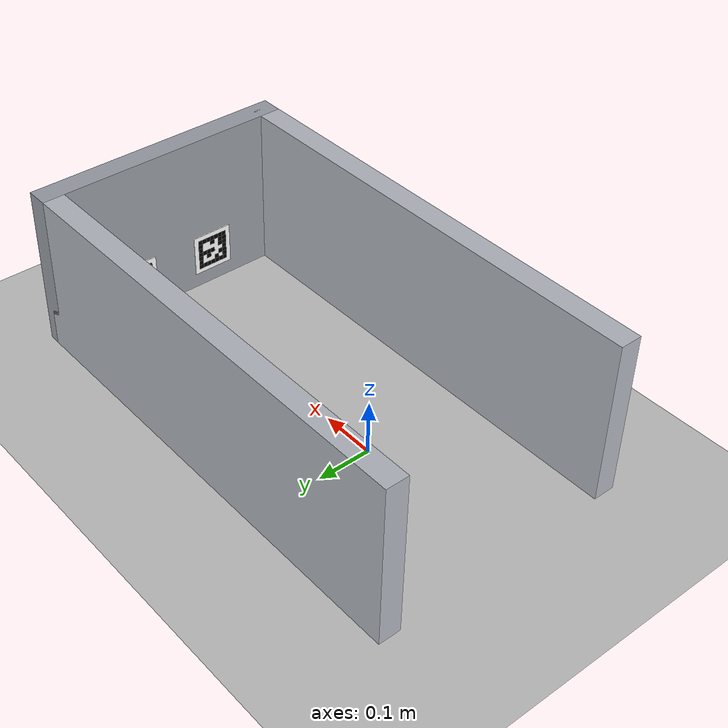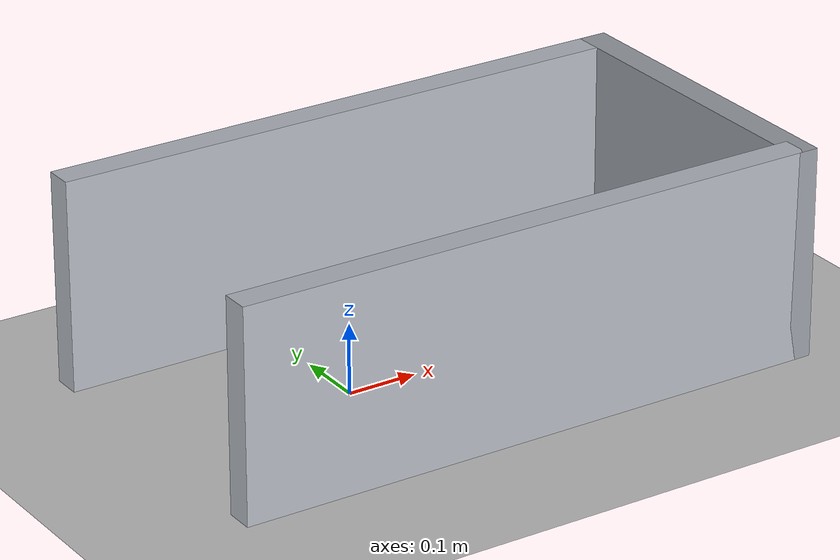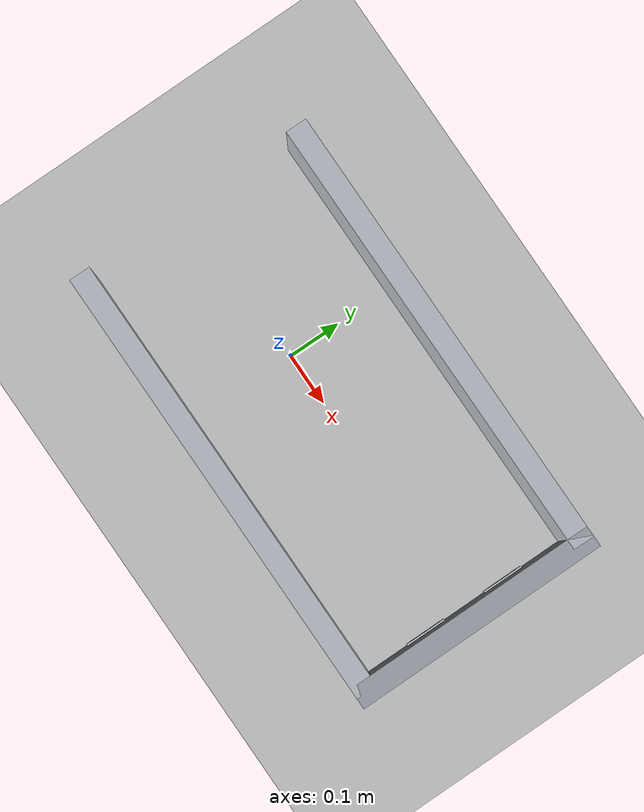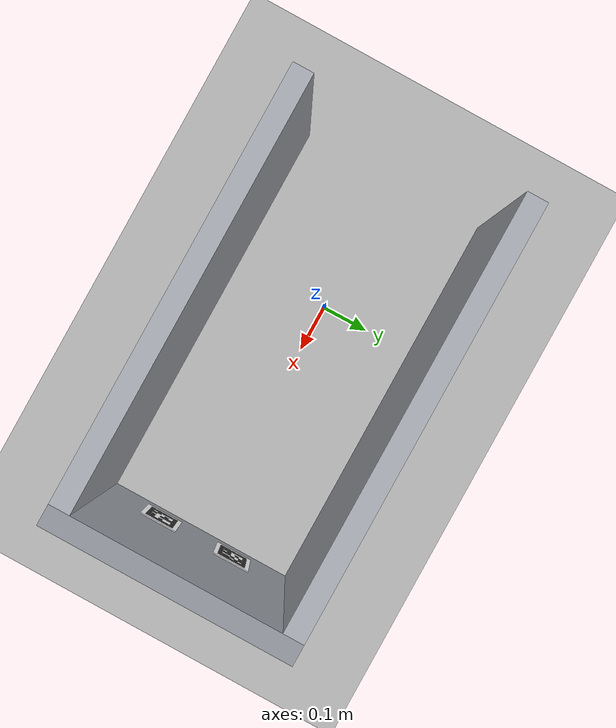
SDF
<?xml version="1.0" ?>
<sdf version="1.8">
  <world name="default">
    <physics name="1ms" type="ignored">
      <max_step_size>0.001</max_step_size>
      <real_time_factor>1.0</real_time_factor>
    </physics>

    <plugin filename="gz-sim-physics-system" name="gz::sim::systems::Physics"/>
    <plugin filename="gz-sim-sensors-system" name="gz::sim::systems::Sensors">
      <render_engine>ogre2</render_engine>
    </plugin>
    <plugin filename="gz-sim-user-commands-system" name="gz::sim::systems::UserCommands"/>
    <plugin filename="gz-sim-scene-broadcaster-system" name="gz::sim::systems::SceneBroadcaster"/>
    <plugin filename="gz-sim-imu-system" name="gz::sim::systems::Imu"/>

    <gui fullscreen="0">
      <camera name="user_camera">
        <!-- Top-down view zoomed into Pinky and the docking wall (x: 0~0.55m, y: -0.3~+0.3m) -->
        <pose>-0.05 0.0 0.95 0.0 1.30 0.0</pose>
        <view_controller>orbit</view_controller>
        <projection_type>perspective</projection_type>
      </camera>
    </gui>

    <light type="directional" name="sun">
      <cast_shadows>false</cast_shadows>
      <pose>0 0 5 0 0 0</pose>
      <diffuse>1 1 1 1</diffuse>
      <specular>0.2 0.2 0.2 1</specular>
      <direction>0.5 0 -1</direction>
    </light>

    <model name="ground_plane">
      <static>true</static>
      <link name="link">
        <collision name="collision">
          <geometry><plane><normal>0 0 1</normal><size>20 20</size></plane></geometry>
        </collision>
        <visual name="visual">
          <geometry><plane><normal>0 0 1</normal><size>20 20</size></plane></geometry>
          <material>
            <ambient>0.75 0.75 0.75 1</ambient>
            <diffuse>0.75 0.75 0.75 1</diffuse>
          </material>
        </visual>
      </link>
    </model>

    <!-- Docking Station Wall at x = 0.55m (front surface at x = 0.53m) -->

    <!-- Docking Station Wall at x = 0.55m (front surface at x = 0.53m) -->
    <model name="docking_station_wall">
      <static>true</static>
      <pose>0.55 0.0 0.15 0 0 0</pose>
      <link name="wall_link">
        <collision name="wall_collision">
          <geometry><box><size>0.04 0.48 0.30</size></box></geometry>
        </collision>
        <visual name="wall_visual">
          <geometry><box><size>0.04 0.48 0.30</size></box></geometry>
          <material>
            <ambient>0.6 0.62 0.65 1</ambient>
            <diffuse>0.6 0.62 0.65 1</diffuse>
            <specular>0.1 0.1 0.1 1</specular>
          </material>
        </visual>
      </link>
    </model>

    <!-- Left corridor wall at y = +0.22m (inner face at y = +0.20m, 20cm left of Pinky) -->
    <model name="corridor_left_wall">
      <static>true</static>
      <pose>0.125 0.22 0.15 0 0 0</pose>
      <link name="left_wall_link">
        <collision name="left_wall_collision">
          <geometry><box><size>0.85 0.04 0.30</size></box></geometry>
        </collision>
        <visual name="left_wall_visual">
          <geometry><box><size>0.85 0.04 0.30</size></box></geometry>
          <material>
            <ambient>0.7 0.72 0.75 1</ambient>
            <diffuse>0.7 0.72 0.75 1</diffuse>
            <specular>0.1 0.1 0.1 1</specular>
          </material>
        </visual>
      </link>
    </model>

    <!-- Right corridor wall at y = -0.22m (inner face at y = -0.20m, 20cm right of Pinky) -->
    <model name="corridor_right_wall">
      <static>true</static>
      <pose>0.125 -0.22 0.15 0 0 0</pose>
      <link name="right_wall_link">
        <collision name="right_wall_collision">
          <geometry><box><size>0.85 0.04 0.30</size></box></geometry>
        </collision>
        <visual name="right_wall_visual">
          <geometry><box><size>0.85 0.04 0.30</size></box></geometry>
          <material>
            <ambient>0.7 0.72 0.75 1</ambient>
            <diffuse>0.7 0.72 0.75 1</diffuse>
            <specular>0.1 0.1 0.1 1</specular>
          </material>
        </visual>
      </link>
    </model>

<model name="aruco_5x5_id0">
      <static>true</static>
      <pose>0.5280 0.0800 0.0680 0 0 0</pose>
      <link name="link">
        <visual name="white_bg">
          <pose>0 0 0 0 0 0</pose>
          <geometry>
            <box><size>0.002 0.07714 0.07714</size></box>
          </geometry>
          <material>
            <ambient>1 1 1 1</ambient>
            <diffuse>1 1 1 1</diffuse>
            <specular>0 0 0 1</specular>
            <emissive>0.85 0.85 0.85 1</emissive>
          </material>
        </visual>
        <visual name="cell_0_0">
          <pose>-0.0008 0.02571 0.02571 0 0 0</pose>
          <geometry>
            <box><size>0.001 0.00866 0.00866</size></box>
          </geometry>
          <material>
            <ambient>0 0 0 1</ambient>
            <diffuse>0 0 0 1</diffuse>
            <specular>0 0 0 1</specular>
            <emissive>0 0 0 1</emissive>
          </material>
        </visual>
        <visual name="cell_0_1">
          <pose>-0.0008 0.01714 0.02571 0 0 0</pose>
          <geometry>
            <box><size>0.001 0.00866 0.00866</size></box>
          </geometry>
          <material>
            <ambient>0 0 0 1</ambient>
            <diffuse>0 0 0 1</diffuse>
            <specular>0 0 0 1</specular>
            <emissive>0 0 0 1</emissive>
          </material>
        </visual>
        <visual name="cell_0_2">
          <pose>-0.0008 0.00857 0.02571 0 0 0</pose>
          <geometry>
            <box><size>0.001 0.00866 0.00866</size></box>
          </geometry>
          <material>
            <ambient>0 0 0 1</ambient>
            <diffuse>0 0 0 1</diffuse>
            <specular>0 0 0 1</specular>
            <emissive>0 0 0 1</emissive>
          </material>
        </visual>
        <visual name="cell_0_3">
          <pose>-0.0008 0.00000 0.02571 0 0 0</pose>
          <geometry>
            <box><size>0.001 0.00866 0.00866</size></box>
          </geometry>
          <material>
            <ambient>0 0 0 1</ambient>
            <diffuse>0 0 0 1</diffuse>
            <specular>0 0 0 1</specular>
            <emissive>0 0 0 1</emissive>
          </material>
        </visual>
        <visual name="cell_0_4">
          <pose>-0.0008 -0.00857 0.02571 0 0 0</pose>
          <geometry>
            <box><size>0.001 0.00866 0.00866</size></box>
          </geometry>
          <material>
            <ambient>0 0 0 1</ambient>
            <diffuse>0 0 0 1</diffuse>
            <specular>0 0 0 1</specular>
            <emissive>0 0 0 1</emissive>
          </material>
        </visual>
        <visual name="cell_0_5">
          <pose>-0.0008 -0.01714 0.02571 0 0 0</pose>
          <geometry>
            <box><size>0.001 0.00866 0.00866</size></box>
          </geometry>
          <material>
            <ambient>0 0 0 1</ambient>
            <diffuse>0 0 0 1</diffuse>
            <specular>0 0 0 1</specular>
            <emissive>0 0 0 1</emissive>
          </material>
        </visual>
        <visual name="cell_0_6">
          <pose>-0.0008 -0.02571 0.02571 0 0 0</pose>
          <geometry>
            <box><size>0.001 0.00866 0.00866</size></box>
          </geometry>
          <material>
            <ambient>0 0 0 1</ambient>
            <diffuse>0 0 0 1</diffuse>
            <specular>0 0 0 1</specular>
            <emissive>0 0 0 1</emissive>
          </material>
        </visual>
        <visual name="cell_1_0">
          <pose>-0.0008 0.02571 0.01714 0 0 0</pose>
          <geometry>
            <box><size>0.001 0.00866 0.00866</size></box>
          </geometry>
          <material>
            <ambient>0 0 0 1</ambient>
            <diffuse>0 0 0 1</diffuse>
            <specular>0 0 0 1</specular>
            <emissive>0 0 0 1</emissive>
          </material>
        </visual>
        <visual name="cell_1_2">
          <pose>-0.0008 0.00857 0.01714 0 0 0</pose>
          <geometry>
            <box><size>0.001 0.00866 0.00866</size></box>
          </geometry>
          <material>
            <ambient>0 0 0 1</ambient>
            <diffuse>0 0 0 1</diffuse>
            <specular>0 0 0 1</specular>
            <emissive>0 0 0 1</emissive>
          </material>
        </visual>
        <visual name="cell_1_4">
          <pose>-0.0008 -0.00857 0.01714 0 0 0</pose>
          <geometry>
            <box><size>0.001 0.00866 0.00866</size></box>
          </geometry>
          <material>
            <ambient>0 0 0 1</ambient>
            <diffuse>0 0 0 1</diffuse>
            <specular>0 0 0 1</specular>
            <emissive>0 0 0 1</emissive>
          </material>
        </visual>
        <visual name="cell_1_5">
          <pose>-0.0008 -0.01714 0.01714 0 0 0</pose>
          <geometry>
            <box><size>0.001 0.00866 0.00866</size></box>
          </geometry>
          <material>
            <ambient>0 0 0 1</ambient>
            <diffuse>0 0 0 1</diffuse>
            <specular>0 0 0 1</specular>
            <emissive>0 0 0 1</emissive>
          </material>
        </visual>
        <visual name="cell_1_6">
          <pose>-0.0008 -0.02571 0.01714 0 0 0</pose>
          <geometry>
            <box><size>0.001 0.00866 0.00866</size></box>
          </geometry>
          <material>
            <ambient>0 0 0 1</ambient>
            <diffuse>0 0 0 1</diffuse>
            <specular>0 0 0 1</specular>
            <emissive>0 0 0 1</emissive>
          </material>
        </visual>
        <visual name="cell_2_0">
          <pose>-0.0008 0.02571 0.00857 0 0 0</pose>
          <geometry>
            <box><size>0.001 0.00866 0.00866</size></box>
          </geometry>
          <material>
            <ambient>0 0 0 1</ambient>
            <diffuse>0 0 0 1</diffuse>
            <specular>0 0 0 1</specular>
            <emissive>0 0 0 1</emissive>
          </material>
        </visual>
        <visual name="cell_2_1">
          <pose>-0.0008 0.01714 0.00857 0 0 0</pose>
          <geometry>
            <box><size>0.001 0.00866 0.00866</size></box>
          </geometry>
          <material>
            <ambient>0 0 0 1</ambient>
            <diffuse>0 0 0 1</diffuse>
            <specular>0 0 0 1</specular>
            <emissive>0 0 0 1</emissive>
          </material>
        </visual>
        <visual name="cell_2_3">
          <pose>-0.0008 0.00000 0.00857 0 0 0</pose>
          <geometry>
            <box><size>0.001 0.00866 0.00866</size></box>
          </geometry>
          <material>
            <ambient>0 0 0 1</ambient>
            <diffuse>0 0 0 1</diffuse>
            <specular>0 0 0 1</specular>
            <emissive>0 0 0 1</emissive>
          </material>
        </visual>
        <visual name="cell_2_6">
          <pose>-0.0008 -0.02571 0.00857 0 0 0</pose>
          <geometry>
            <box><size>0.001 0.00866 0.00866</size></box>
          </geometry>
          <material>
            <ambient>0 0 0 1</ambient>
            <diffuse>0 0 0 1</diffuse>
            <specular>0 0 0 1</specular>
            <emissive>0 0 0 1</emissive>
          </material>
        </visual>
        <visual name="cell_3_0">
          <pose>-0.0008 0.02571 0.00000 0 0 0</pose>
          <geometry>
            <box><size>0.001 0.00866 0.00866</size></box>
          </geometry>
          <material>
            <ambient>0 0 0 1</ambient>
            <diffuse>0 0 0 1</diffuse>
            <specular>0 0 0 1</specular>
            <emissive>0 0 0 1</emissive>
          </material>
        </visual>
        <visual name="cell_3_1">
          <pose>-0.0008 0.01714 0.00000 0 0 0</pose>
          <geometry>
            <box><size>0.001 0.00866 0.00866</size></box>
          </geometry>
          <material>
            <ambient>0 0 0 1</ambient>
            <diffuse>0 0 0 1</diffuse>
            <specular>0 0 0 1</specular>
            <emissive>0 0 0 1</emissive>
          </material>
        </visual>
        <visual name="cell_3_4">
          <pose>-0.0008 -0.00857 0.00000 0 0 0</pose>
          <geometry>
            <box><size>0.001 0.00866 0.00866</size></box>
          </geometry>
          <material>
            <ambient>0 0 0 1</ambient>
            <diffuse>0 0 0 1</diffuse>
            <specular>0 0 0 1</specular>
            <emissive>0 0 0 1</emissive>
          </material>
        </visual>
        <visual name="cell_3_5">
          <pose>-0.0008 -0.01714 0.00000 0 0 0</pose>
          <geometry>
            <box><size>0.001 0.00866 0.00866</size></box>
          </geometry>
          <material>
            <ambient>0 0 0 1</ambient>
            <diffuse>0 0 0 1</diffuse>
            <specular>0 0 0 1</specular>
            <emissive>0 0 0 1</emissive>
          </material>
        </visual>
        <visual name="cell_3_6">
          <pose>-0.0008 -0.02571 0.00000 0 0 0</pose>
          <geometry>
            <box><size>0.001 0.00866 0.00866</size></box>
          </geometry>
          <material>
            <ambient>0 0 0 1</ambient>
            <diffuse>0 0 0 1</diffuse>
            <specular>0 0 0 1</specular>
            <emissive>0 0 0 1</emissive>
          </material>
        </visual>
        <visual name="cell_4_0">
          <pose>-0.0008 0.02571 -0.00857 0 0 0</pose>
          <geometry>
            <box><size>0.001 0.00866 0.00866</size></box>
          </geometry>
          <material>
            <ambient>0 0 0 1</ambient>
            <diffuse>0 0 0 1</diffuse>
            <specular>0 0 0 1</specular>
            <emissive>0 0 0 1</emissive>
          </material>
        </visual>
        <visual name="cell_4_2">
          <pose>-0.0008 0.00857 -0.00857 0 0 0</pose>
          <geometry>
            <box><size>0.001 0.00866 0.00866</size></box>
          </geometry>
          <material>
            <ambient>0 0 0 1</ambient>
            <diffuse>0 0 0 1</diffuse>
            <specular>0 0 0 1</specular>
            <emissive>0 0 0 1</emissive>
          </material>
        </visual>
        <visual name="cell_4_4">
          <pose>-0.0008 -0.00857 -0.00857 0 0 0</pose>
          <geometry>
            <box><size>0.001 0.00866 0.00866</size></box>
          </geometry>
          <material>
            <ambient>0 0 0 1</ambient>
            <diffuse>0 0 0 1</diffuse>
            <specular>0 0 0 1</specular>
            <emissive>0 0 0 1</emissive>
          </material>
        </visual>
        <visual name="cell_4_6">
          <pose>-0.0008 -0.02571 -0.00857 0 0 0</pose>
          <geometry>
            <box><size>0.001 0.00866 0.00866</size></box>
          </geometry>
          <material>
            <ambient>0 0 0 1</ambient>
            <diffuse>0 0 0 1</diffuse>
            <specular>0 0 0 1</specular>
            <emissive>0 0 0 1</emissive>
          </material>
        </visual>
        <visual name="cell_5_0">
          <pose>-0.0008 0.02571 -0.01714 0 0 0</pose>
          <geometry>
            <box><size>0.001 0.00866 0.00866</size></box>
          </geometry>
          <material>
            <ambient>0 0 0 1</ambient>
            <diffuse>0 0 0 1</diffuse>
            <specular>0 0 0 1</specular>
            <emissive>0 0 0 1</emissive>
          </material>
        </visual>
        <visual name="cell_5_4">
          <pose>-0.0008 -0.00857 -0.01714 0 0 0</pose>
          <geometry>
            <box><size>0.001 0.00866 0.00866</size></box>
          </geometry>
          <material>
            <ambient>0 0 0 1</ambient>
            <diffuse>0 0 0 1</diffuse>
            <specular>0 0 0 1</specular>
            <emissive>0 0 0 1</emissive>
          </material>
        </visual>
        <visual name="cell_5_5">
          <pose>-0.0008 -0.01714 -0.01714 0 0 0</pose>
          <geometry>
            <box><size>0.001 0.00866 0.00866</size></box>
          </geometry>
          <material>
            <ambient>0 0 0 1</ambient>
            <diffuse>0 0 0 1</diffuse>
            <specular>0 0 0 1</specular>
            <emissive>0 0 0 1</emissive>
          </material>
        </visual>
        <visual name="cell_5_6">
          <pose>-0.0008 -0.02571 -0.01714 0 0 0</pose>
          <geometry>
            <box><size>0.001 0.00866 0.00866</size></box>
          </geometry>
          <material>
            <ambient>0 0 0 1</ambient>
            <diffuse>0 0 0 1</diffuse>
            <specular>0 0 0 1</specular>
            <emissive>0 0 0 1</emissive>
          </material>
        </visual>
        <visual name="cell_6_0">
          <pose>-0.0008 0.02571 -0.02571 0 0 0</pose>
          <geometry>
            <box><size>0.001 0.00866 0.00866</size></box>
          </geometry>
          <material>
            <ambient>0 0 0 1</ambient>
            <diffuse>0 0 0 1</diffuse>
            <specular>0 0 0 1</specular>
            <emissive>0 0 0 1</emissive>
          </material>
        </visual>
        <visual name="cell_6_1">
          <pose>-0.0008 0.01714 -0.02571 0 0 0</pose>
          <geometry>
            <box><size>0.001 0.00866 0.00866</size></box>
          </geometry>
          <material>
            <ambient>0 0 0 1</ambient>
            <diffuse>0 0 0 1</diffuse>
            <specular>0 0 0 1</specular>
            <emissive>0 0 0 1</emissive>
          </material>
        </visual>
        <visual name="cell_6_2">
          <pose>-0.0008 0.00857 -0.02571 0 0 0</pose>
          <geometry>
            <box><size>0.001 0.00866 0.00866</size></box>
          </geometry>
          <material>
            <ambient>0 0 0 1</ambient>
            <diffuse>0 0 0 1</diffuse>
            <specular>0 0 0 1</specular>
            <emissive>0 0 0 1</emissive>
          </material>
        </visual>
        <visual name="cell_6_3">
          <pose>-0.0008 0.00000 -0.02571 0 0 0</pose>
          <geometry>
            <box><size>0.001 0.00866 0.00866</size></box>
          </geometry>
          <material>
            <ambient>0 0 0 1</ambient>
            <diffuse>0 0 0 1</diffuse>
            <specular>0 0 0 1</specular>
            <emissive>0 0 0 1</emissive>
          </material>
        </visual>
        <visual name="cell_6_4">
          <pose>-0.0008 -0.00857 -0.02571 0 0 0</pose>
          <geometry>
            <box><size>0.001 0.00866 0.00866</size></box>
          </geometry>
          <material>
            <ambient>0 0 0 1</ambient>
            <diffuse>0 0 0 1</diffuse>
            <specular>0 0 0 1</specular>
            <emissive>0 0 0 1</emissive>
          </material>
        </visual>
        <visual name="cell_6_5">
          <pose>-0.0008 -0.01714 -0.02571 0 0 0</pose>
          <geometry>
            <box><size>0.001 0.00866 0.00866</size></box>
          </geometry>
          <material>
            <ambient>0 0 0 1</ambient>
            <diffuse>0 0 0 1</diffuse>
            <specular>0 0 0 1</specular>
            <emissive>0 0 0 1</emissive>
          </material>
        </visual>
        <visual name="cell_6_6">
          <pose>-0.0008 -0.02571 -0.02571 0 0 0</pose>
          <geometry>
            <box><size>0.001 0.00866 0.00866</size></box>
          </geometry>
          <material>
            <ambient>0 0 0 1</ambient>
            <diffuse>0 0 0 1</diffuse>
            <specular>0 0 0 1</specular>
            <emissive>0 0 0 1</emissive>
          </material>
        </visual>
      </link>
    </model>
<model name="aruco_5x5_id2">
      <static>true</static>
      <pose>0.5280 -0.0800 0.0680 0 0 0</pose>
      <link name="link">
        <visual name="white_bg">
          <pose>0 0 0 0 0 0</pose>
          <geometry>
            <box><size>0.002 0.07714 0.07714</size></box>
          </geometry>
          <material>
            <ambient>1 1 1 1</ambient>
            <diffuse>1 1 1 1</diffuse>
            <specular>0 0 0 1</specular>
            <emissive>0.85 0.85 0.85 1</emissive>
          </material>
        </visual>
        <visual name="cell_0_0">
          <pose>-0.0008 0.02571 0.02571 0 0 0</pose>
          <geometry>
            <box><size>0.001 0.00866 0.00866</size></box>
          </geometry>
          <material>
            <ambient>0 0 0 1</ambient>
            <diffuse>0 0 0 1</diffuse>
            <specular>0 0 0 1</specular>
            <emissive>0 0 0 1</emissive>
          </material>
        </visual>
        <visual name="cell_0_1">
          <pose>-0.0008 0.01714 0.02571 0 0 0</pose>
          <geometry>
            <box><size>0.001 0.00866 0.00866</size></box>
          </geometry>
          <material>
            <ambient>0 0 0 1</ambient>
            <diffuse>0 0 0 1</diffuse>
            <specular>0 0 0 1</specular>
            <emissive>0 0 0 1</emissive>
          </material>
        </visual>
        <visual name="cell_0_2">
          <pose>-0.0008 0.00857 0.02571 0 0 0</pose>
          <geometry>
            <box><size>0.001 0.00866 0.00866</size></box>
          </geometry>
          <material>
            <ambient>0 0 0 1</ambient>
            <diffuse>0 0 0 1</diffuse>
            <specular>0 0 0 1</specular>
            <emissive>0 0 0 1</emissive>
          </material>
        </visual>
        <visual name="cell_0_3">
          <pose>-0.0008 0.00000 0.02571 0 0 0</pose>
          <geometry>
            <box><size>0.001 0.00866 0.00866</size></box>
          </geometry>
          <material>
            <ambient>0 0 0 1</ambient>
            <diffuse>0 0 0 1</diffuse>
            <specular>0 0 0 1</specular>
            <emissive>0 0 0 1</emissive>
          </material>
        </visual>
        <visual name="cell_0_4">
          <pose>-0.0008 -0.00857 0.02571 0 0 0</pose>
          <geometry>
            <box><size>0.001 0.00866 0.00866</size></box>
          </geometry>
          <material>
            <ambient>0 0 0 1</ambient>
            <diffuse>0 0 0 1</diffuse>
            <specular>0 0 0 1</specular>
            <emissive>0 0 0 1</emissive>
          </material>
        </visual>
        <visual name="cell_0_5">
          <pose>-0.0008 -0.01714 0.02571 0 0 0</pose>
          <geometry>
            <box><size>0.001 0.00866 0.00866</size></box>
          </geometry>
          <material>
            <ambient>0 0 0 1</ambient>
            <diffuse>0 0 0 1</diffuse>
            <specular>0 0 0 1</specular>
            <emissive>0 0 0 1</emissive>
          </material>
        </visual>
        <visual name="cell_0_6">
          <pose>-0.0008 -0.02571 0.02571 0 0 0</pose>
          <geometry>
            <box><size>0.001 0.00866 0.00866</size></box>
          </geometry>
          <material>
            <ambient>0 0 0 1</ambient>
            <diffuse>0 0 0 1</diffuse>
            <specular>0 0 0 1</specular>
            <emissive>0 0 0 1</emissive>
          </material>
        </visual>
        <visual name="cell_1_0">
          <pose>-0.0008 0.02571 0.01714 0 0 0</pose>
          <geometry>
            <box><size>0.001 0.00866 0.00866</size></box>
          </geometry>
          <material>
            <ambient>0 0 0 1</ambient>
            <diffuse>0 0 0 1</diffuse>
            <specular>0 0 0 1</specular>
            <emissive>0 0 0 1</emissive>
          </material>
        </visual>
        <visual name="cell_1_3">
          <pose>-0.0008 0.00000 0.01714 0 0 0</pose>
          <geometry>
            <box><size>0.001 0.00866 0.00866</size></box>
          </geometry>
          <material>
            <ambient>0 0 0 1</ambient>
            <diffuse>0 0 0 1</diffuse>
            <specular>0 0 0 1</specular>
            <emissive>0 0 0 1</emissive>
          </material>
        </visual>
        <visual name="cell_1_5">
          <pose>-0.0008 -0.01714 0.01714 0 0 0</pose>
          <geometry>
            <box><size>0.001 0.00866 0.00866</size></box>
          </geometry>
          <material>
            <ambient>0 0 0 1</ambient>
            <diffuse>0 0 0 1</diffuse>
            <specular>0 0 0 1</specular>
            <emissive>0 0 0 1</emissive>
          </material>
        </visual>
        <visual name="cell_1_6">
          <pose>-0.0008 -0.02571 0.01714 0 0 0</pose>
          <geometry>
            <box><size>0.001 0.00866 0.00866</size></box>
          </geometry>
          <material>
            <ambient>0 0 0 1</ambient>
            <diffuse>0 0 0 1</diffuse>
            <specular>0 0 0 1</specular>
            <emissive>0 0 0 1</emissive>
          </material>
        </visual>
        <visual name="cell_2_0">
          <pose>-0.0008 0.02571 0.00857 0 0 0</pose>
          <geometry>
            <box><size>0.001 0.00866 0.00866</size></box>
          </geometry>
          <material>
            <ambient>0 0 0 1</ambient>
            <diffuse>0 0 0 1</diffuse>
            <specular>0 0 0 1</specular>
            <emissive>0 0 0 1</emissive>
          </material>
        </visual>
        <visual name="cell_2_5">
          <pose>-0.0008 -0.01714 0.00857 0 0 0</pose>
          <geometry>
            <box><size>0.001 0.00866 0.00866</size></box>
          </geometry>
          <material>
            <ambient>0 0 0 1</ambient>
            <diffuse>0 0 0 1</diffuse>
            <specular>0 0 0 1</specular>
            <emissive>0 0 0 1</emissive>
          </material>
        </visual>
        <visual name="cell_2_6">
          <pose>-0.0008 -0.02571 0.00857 0 0 0</pose>
          <geometry>
            <box><size>0.001 0.00866 0.00866</size></box>
          </geometry>
          <material>
            <ambient>0 0 0 1</ambient>
            <diffuse>0 0 0 1</diffuse>
            <specular>0 0 0 1</specular>
            <emissive>0 0 0 1</emissive>
          </material>
        </visual>
        <visual name="cell_3_0">
          <pose>-0.0008 0.02571 0.00000 0 0 0</pose>
          <geometry>
            <box><size>0.001 0.00866 0.00866</size></box>
          </geometry>
          <material>
            <ambient>0 0 0 1</ambient>
            <diffuse>0 0 0 1</diffuse>
            <specular>0 0 0 1</specular>
            <emissive>0 0 0 1</emissive>
          </material>
        </visual>
        <visual name="cell_3_1">
          <pose>-0.0008 0.01714 0.00000 0 0 0</pose>
          <geometry>
            <box><size>0.001 0.00866 0.00866</size></box>
          </geometry>
          <material>
            <ambient>0 0 0 1</ambient>
            <diffuse>0 0 0 1</diffuse>
            <specular>0 0 0 1</specular>
            <emissive>0 0 0 1</emissive>
          </material>
        </visual>
        <visual name="cell_3_2">
          <pose>-0.0008 0.00857 0.00000 0 0 0</pose>
          <geometry>
            <box><size>0.001 0.00866 0.00866</size></box>
          </geometry>
          <material>
            <ambient>0 0 0 1</ambient>
            <diffuse>0 0 0 1</diffuse>
            <specular>0 0 0 1</specular>
            <emissive>0 0 0 1</emissive>
          </material>
        </visual>
        <visual name="cell_3_3">
          <pose>-0.0008 0.00000 0.00000 0 0 0</pose>
          <geometry>
            <box><size>0.001 0.00866 0.00866</size></box>
          </geometry>
          <material>
            <ambient>0 0 0 1</ambient>
            <diffuse>0 0 0 1</diffuse>
            <specular>0 0 0 1</specular>
            <emissive>0 0 0 1</emissive>
          </material>
        </visual>
        <visual name="cell_3_6">
          <pose>-0.0008 -0.02571 0.00000 0 0 0</pose>
          <geometry>
            <box><size>0.001 0.00866 0.00866</size></box>
          </geometry>
          <material>
            <ambient>0 0 0 1</ambient>
            <diffuse>0 0 0 1</diffuse>
            <specular>0 0 0 1</specular>
            <emissive>0 0 0 1</emissive>
          </material>
        </visual>
        <visual name="cell_4_0">
          <pose>-0.0008 0.02571 -0.00857 0 0 0</pose>
          <geometry>
            <box><size>0.001 0.00866 0.00866</size></box>
          </geometry>
          <material>
            <ambient>0 0 0 1</ambient>
            <diffuse>0 0 0 1</diffuse>
            <specular>0 0 0 1</specular>
            <emissive>0 0 0 1</emissive>
          </material>
        </visual>
        <visual name="cell_4_2">
          <pose>-0.0008 0.00857 -0.00857 0 0 0</pose>
          <geometry>
            <box><size>0.001 0.00866 0.00866</size></box>
          </geometry>
          <material>
            <ambient>0 0 0 1</ambient>
            <diffuse>0 0 0 1</diffuse>
            <specular>0 0 0 1</specular>
            <emissive>0 0 0 1</emissive>
          </material>
        </visual>
        <visual name="cell_4_5">
          <pose>-0.0008 -0.01714 -0.00857 0 0 0</pose>
          <geometry>
            <box><size>0.001 0.00866 0.00866</size></box>
          </geometry>
          <material>
            <ambient>0 0 0 1</ambient>
            <diffuse>0 0 0 1</diffuse>
            <specular>0 0 0 1</specular>
            <emissive>0 0 0 1</emissive>
          </material>
        </visual>
        <visual name="cell_4_6">
          <pose>-0.0008 -0.02571 -0.00857 0 0 0</pose>
          <geometry>
            <box><size>0.001 0.00866 0.00866</size></box>
          </geometry>
          <material>
            <ambient>0 0 0 1</ambient>
            <diffuse>0 0 0 1</diffuse>
            <specular>0 0 0 1</specular>
            <emissive>0 0 0 1</emissive>
          </material>
        </visual>
        <visual name="cell_5_0">
          <pose>-0.0008 0.02571 -0.01714 0 0 0</pose>
          <geometry>
            <box><size>0.001 0.00866 0.00866</size></box>
          </geometry>
          <material>
            <ambient>0 0 0 1</ambient>
            <diffuse>0 0 0 1</diffuse>
            <specular>0 0 0 1</specular>
            <emissive>0 0 0 1</emissive>
          </material>
        </visual>
        <visual name="cell_5_4">
          <pose>-0.0008 -0.00857 -0.01714 0 0 0</pose>
          <geometry>
            <box><size>0.001 0.00866 0.00866</size></box>
          </geometry>
          <material>
            <ambient>0 0 0 1</ambient>
            <diffuse>0 0 0 1</diffuse>
            <specular>0 0 0 1</specular>
            <emissive>0 0 0 1</emissive>
          </material>
        </visual>
        <visual name="cell_5_6">
          <pose>-0.0008 -0.02571 -0.01714 0 0 0</pose>
          <geometry>
            <box><size>0.001 0.00866 0.00866</size></box>
          </geometry>
          <material>
            <ambient>0 0 0 1</ambient>
            <diffuse>0 0 0 1</diffuse>
            <specular>0 0 0 1</specular>
            <emissive>0 0 0 1</emissive>
          </material>
        </visual>
        <visual name="cell_6_0">
          <pose>-0.0008 0.02571 -0.02571 0 0 0</pose>
          <geometry>
            <box><size>0.001 0.00866 0.00866</size></box>
          </geometry>
          <material>
            <ambient>0 0 0 1</ambient>
            <diffuse>0 0 0 1</diffuse>
            <specular>0 0 0 1</specular>
            <emissive>0 0 0 1</emissive>
          </material>
        </visual>
        <visual name="cell_6_1">
          <pose>-0.0008 0.01714 -0.02571 0 0 0</pose>
          <geometry>
            <box><size>0.001 0.00866 0.00866</size></box>
          </geometry>
          <material>
            <ambient>0 0 0 1</ambient>
            <diffuse>0 0 0 1</diffuse>
            <specular>0 0 0 1</specular>
            <emissive>0 0 0 1</emissive>
          </material>
        </visual>
        <visual name="cell_6_2">
          <pose>-0.0008 0.00857 -0.02571 0 0 0</pose>
          <geometry>
            <box><size>0.001 0.00866 0.00866</size></box>
          </geometry>
          <material>
            <ambient>0 0 0 1</ambient>
            <diffuse>0 0 0 1</diffuse>
            <specular>0 0 0 1</specular>
            <emissive>0 0 0 1</emissive>
          </material>
        </visual>
        <visual name="cell_6_3">
          <pose>-0.0008 0.00000 -0.02571 0 0 0</pose>
          <geometry>
            <box><size>0.001 0.00866 0.00866</size></box>
          </geometry>
          <material>
            <ambient>0 0 0 1</ambient>
            <diffuse>0 0 0 1</diffuse>
            <specular>0 0 0 1</specular>
            <emissive>0 0 0 1</emissive>
          </material>
        </visual>
        <visual name="cell_6_4">
          <pose>-0.0008 -0.00857 -0.02571 0 0 0</pose>
          <geometry>
            <box><size>0.001 0.00866 0.00866</size></box>
          </geometry>
          <material>
            <ambient>0 0 0 1</ambient>
            <diffuse>0 0 0 1</diffuse>
            <specular>0 0 0 1</specular>
            <emissive>0 0 0 1</emissive>
          </material>
        </visual>
        <visual name="cell_6_5">
          <pose>-0.0008 -0.01714 -0.02571 0 0 0</pose>
          <geometry>
            <box><size>0.001 0.00866 0.00866</size></box>
          </geometry>
          <material>
            <ambient>0 0 0 1</ambient>
            <diffuse>0 0 0 1</diffuse>
            <specular>0 0 0 1</specular>
            <emissive>0 0 0 1</emissive>
          </material>
        </visual>
        <visual name="cell_6_6">
          <pose>-0.0008 -0.02571 -0.02571 0 0 0</pose>
          <geometry>
            <box><size>0.001 0.00866 0.00866</size></box>
          </geometry>
          <material>
            <ambient>0 0 0 1</ambient>
            <diffuse>0 0 0 1</diffuse>
            <specular>0 0 0 1</specular>
            <emissive>0 0 0 1</emissive>
          </material>
        </visual>
      </link>
    </model>

  </world>
</sdf>
